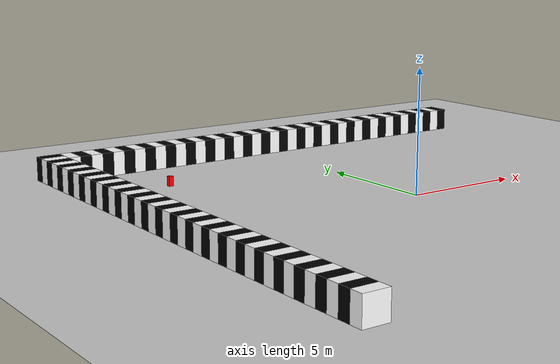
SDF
<sdf version="1.9">
 <world name="default">
  <model name="ground_plane">
   <static>true</static>
   <link name="link">
    <collision name="collision">
     <geometry><plane><normal>0 0 1</normal><size>100 100</size></plane></geometry>
    </collision>
    <visual name="visual">
     <geometry><plane><normal>0 0 1</normal><size>100 100</size></plane></geometry>
     <material>
      <ambient>0.8 0.8 0.8 1</ambient>
      <diffuse>0.8 0.8 0.8 1</diffuse>
      <specular>0.8 0.8 0.8 1</specular>
     </material>
    </visual>
   </link>
  </model>
  <model name="wall3">
   <static>true</static>
   <link name="link">
    <collision name="collision1">
     <geometry>
      <polyline>
       <point>-10 11</point>
       <point>-10 -10</point>
       <point>-11 -10</point>
       <point>-11 11</point>
       <height>1</height>
      </polyline>
     </geometry>
    </collision>
    <visual name="s1">
     <pose>-10.5 -9.75 0.5 0 0 0</pose>
     <geometry><box><size>1 0.5 1</size></box></geometry>
     <material><ambient>1 1 1 1</ambient><diffuse>1 1 1 1</diffuse></material>
    </visual>
    <visual name="s2">
     <pose>-10.5 -9.25 0.5 0 0 0</pose>
     <geometry><box><size>1 0.5 1</size></box></geometry>
     <material><ambient>0 0 0 1</ambient><diffuse>0 0 0 1</diffuse></material>
    </visual>
    <visual name="s3">
     <pose>-10.5 -8.75 0.5 0 0 0</pose>
     <geometry><box><size>1 0.5 1</size></box></geometry>
     <material><ambient>1 1 1 1</ambient><diffuse>1 1 1 1</diffuse></material>
    </visual>
    <visual name="s4">
     <pose>-10.5 -8.25 0.5 0 0 0</pose>
     <geometry><box><size>1 0.5 1</size></box></geometry>
     <material><ambient>0 0 0 1</ambient><diffuse>0 0 0 1</diffuse></material>
    </visual>
    <visual name="s5">
     <pose>-10.5 -7.75 0.5 0 0 0</pose>
     <geometry><box><size>1 0.5 1</size></box></geometry>
     <material><ambient>1 1 1 1</ambient><diffuse>1 1 1 1</diffuse></material>
    </visual>
    <visual name="s6">
     <pose>-10.5 -7.25 0.5 0 0 0</pose>
     <geometry><box><size>1 0.5 1</size></box></geometry>
     <material><ambient>0 0 0 1</ambient><diffuse>0 0 0 1</diffuse></material>
    </visual>
    <visual name="s7">
     <pose>-10.5 -6.75 0.5 0 0 0</pose>
     <geometry><box><size>1 0.5 1</size></box></geometry>
     <material><ambient>1 1 1 1</ambient><diffuse>1 1 1 1</diffuse></material>
    </visual>
    <visual name="s8">
     <pose>-10.5 -6.25 0.5 0 0 0</pose>
     <geometry><box><size>1 0.5 1</size></box></geometry>
     <material><ambient>0 0 0 1</ambient><diffuse>0 0 0 1</diffuse></material>
    </visual>
    <visual name="s9">
     <pose>-10.5 -5.75 0.5 0 0 0</pose>
     <geometry><box><size>1 0.5 1</size></box></geometry>
     <material><ambient>1 1 1 1</ambient><diffuse>1 1 1 1</diffuse></material>
    </visual>
    <visual name="s10">
     <pose>-10.5 -5.25 0.5 0 0 0</pose>
     <geometry><box><size>1 0.5 1</size></box></geometry>
     <material><ambient>0 0 0 1</ambient><diffuse>0 0 0 1</diffuse></material>
    </visual>
    <visual name="s11">
     <pose>-10.5 -4.75 0.5 0 0 0</pose>
     <geometry><box><size>1 0.5 1</size></box></geometry>
     <material><ambient>1 1 1 1</ambient><diffuse>1 1 1 1</diffuse></material>
    </visual>
    <visual name="s12">
     <pose>-10.5 -4.25 0.5 0 0 0</pose>
     <geometry><box><size>1 0.5 1</size></box></geometry>
     <material><ambient>0 0 0 1</ambient><diffuse>0 0 0 1</diffuse></material>
    </visual>
    <visual name="s13">
     <pose>-10.5 -3.75 0.5 0 0 0</pose>
     <geometry><box><size>1 0.5 1</size></box></geometry>
     <material><ambient>1 1 1 1</ambient><diffuse>1 1 1 1</diffuse></material>
    </visual>
    <visual name="s14">
     <pose>-10.5 -3.25 0.5 0 0 0</pose>
     <geometry><box><size>1 0.5 1</size></box></geometry>
     <material><ambient>0 0 0 1</ambient><diffuse>0 0 0 1</diffuse></material>
    </visual>
    <visual name="s15">
     <pose>-10.5 -2.75 0.5 0 0 0</pose>
     <geometry><box><size>1 0.5 1</size></box></geometry>
     <material><ambient>1 1 1 1</ambient><diffuse>1 1 1 1</diffuse></material>
    </visual>
    <visual name="s16">
     <pose>-10.5 -2.25 0.5 0 0 0</pose>
     <geometry><box><size>1 0.5 1</size></box></geometry>
     <material><ambient>0 0 0 1</ambient><diffuse>0 0 0 1</diffuse></material>
    </visual>
    <visual name="s17">
     <pose>-10.5 -1.75 0.5 0 0 0</pose>
     <geometry><box><size>1 0.5 1</size></box></geometry>
     <material><ambient>1 1 1 1</ambient><diffuse>1 1 1 1</diffuse></material>
    </visual>
    <visual name="s18">
     <pose>-10.5 -1.25 0.5 0 0 0</pose>
     <geometry><box><size>1 0.5 1</size></box></geometry>
     <material><ambient>0 0 0 1</ambient><diffuse>0 0 0 1</diffuse></material>
    </visual>
    <visual name="s19">
     <pose>-10.5 -0.75 0.5 0 0 0</pose>
     <geometry><box><size>1 0.5 1</size></box></geometry>
     <material><ambient>1 1 1 1</ambient><diffuse>1 1 1 1</diffuse></material>
    </visual>
    <visual name="s20">
     <pose>-10.5 -0.25 0.5 0 0 0</pose>
     <geometry><box><size>1 0.5 1</size></box></geometry>
     <material><ambient>0 0 0 1</ambient><diffuse>0 0 0 1</diffuse></material>
    </visual>
    <visual name="s21">
     <pose>-10.5 0.25 0.5 0 0 0</pose>
     <geometry><box><size>1 0.5 1</size></box></geometry>
     <material><ambient>1 1 1 1</ambient><diffuse>1 1 1 1</diffuse></material>
    </visual>
    <visual name="s22">
     <pose>-10.5 0.75 0.5 0 0 0</pose>
     <geometry><box><size>1 0.5 1</size></box></geometry>
     <material><ambient>0 0 0 1</ambient><diffuse>0 0 0 1</diffuse></material>
    </visual>
    <visual name="s23">
     <pose>-10.5 1.25 0.5 0 0 0</pose>
     <geometry><box><size>1 0.5 1</size></box></geometry>
     <material><ambient>1 1 1 1</ambient><diffuse>1 1 1 1</diffuse></material>
    </visual>
    <visual name="s24">
     <pose>-10.5 1.75 0.5 0 0 0</pose>
     <geometry><box><size>1 0.5 1</size></box></geometry>
     <material><ambient>0 0 0 1</ambient><diffuse>0 0 0 1</diffuse></material>
    </visual>
    <visual name="s25">
     <pose>-10.5 2.25 0.5 0 0 0</pose>
     <geometry><box><size>1 0.5 1</size></box></geometry>
     <material><ambient>1 1 1 1</ambient><diffuse>1 1 1 1</diffuse></material>
    </visual>
    <visual name="s26">
     <pose>-10.5 2.75 0.5 0 0 0</pose>
     <geometry><box><size>1 0.5 1</size></box></geometry>
     <material><ambient>0 0 0 1</ambient><diffuse>0 0 0 1</diffuse></material>
    </visual>
    <visual name="s27">
     <pose>-10.5 3.25 0.5 0 0 0</pose>
     <geometry><box><size>1 0.5 1</size></box></geometry>
     <material><ambient>1 1 1 1</ambient><diffuse>1 1 1 1</diffuse></material>
    </visual>
    <visual name="s28">
     <pose>-10.5 3.75 0.5 0 0 0</pose>
     <geometry><box><size>1 0.5 1</size></box></geometry>
     <material><ambient>0 0 0 1</ambient><diffuse>0 0 0 1</diffuse></material>
    </visual>
    <visual name="s29">
     <pose>-10.5 4.25 0.5 0 0 0</pose>
     <geometry><box><size>1 0.5 1</size></box></geometry>
     <material><ambient>1 1 1 1</ambient><diffuse>1 1 1 1</diffuse></material>
    </visual>
    <visual name="s30">
     <pose>-10.5 4.75 0.5 0 0 0</pose>
     <geometry><box><size>1 0.5 1</size></box></geometry>
     <material><ambient>0 0 0 1</ambient><diffuse>0 0 0 1</diffuse></material>
    </visual>
    <visual name="s31">
     <pose>-10.5 5.25 0.5 0 0 0</pose>
     <geometry><box><size>1 0.5 1</size></box></geometry>
     <material><ambient>1 1 1 1</ambient><diffuse>1 1 1 1</diffuse></material>
    </visual>
    <visual name="s32">
     <pose>-10.5 5.75 0.5 0 0 0</pose>
     <geometry><box><size>1 0.5 1</size></box></geometry>
     <material><ambient>0 0 0 1</ambient><diffuse>0 0 0 1</diffuse></material>
    </visual>
    <visual name="s33">
     <pose>-10.5 6.25 0.5 0 0 0</pose>
     <geometry><box><size>1 0.5 1</size></box></geometry>
     <material><ambient>1 1 1 1</ambient><diffuse>1 1 1 1</diffuse></material>
    </visual>
    <visual name="s34">
     <pose>-10.5 6.75 0.5 0 0 0</pose>
     <geometry><box><size>1 0.5 1</size></box></geometry>
     <material><ambient>0 0 0 1</ambient><diffuse>0 0 0 1</diffuse></material>
    </visual>
    <visual name="s35">
     <pose>-10.5 7.25 0.5 0 0 0</pose>
     <geometry><box><size>1 0.5 1</size></box></geometry>
     <material><ambient>1 1 1 1</ambient><diffuse>1 1 1 1</diffuse></material>
    </visual>
    <visual name="s36">
     <pose>-10.5 7.75 0.5 0 0 0</pose>
     <geometry><box><size>1 0.5 1</size></box></geometry>
     <material><ambient>0 0 0 1</ambient><diffuse>0 0 0 1</diffuse></material>
    </visual>
    <visual name="s37">
     <pose>-10.5 8.25 0.5 0 0 0</pose>
     <geometry><box><size>1 0.5 1</size></box></geometry>
     <material><ambient>1 1 1 1</ambient><diffuse>1 1 1 1</diffuse></material>
    </visual>
    <visual name="s38">
     <pose>-10.5 8.75 0.5 0 0 0</pose>
     <geometry><box><size>1 0.5 1</size></box></geometry>
     <material><ambient>0 0 0 1</ambient><diffuse>0 0 0 1</diffuse></material>
    </visual>
    <visual name="s39">
     <pose>-10.5 9.25 0.5 0 0 0</pose>
     <geometry><box><size>1 0.5 1</size></box></geometry>
     <material><ambient>1 1 1 1</ambient><diffuse>1 1 1 1</diffuse></material>
    </visual>
    <visual name="s40">
     <pose>-10.5 9.75 0.5 0 0 0</pose>
     <geometry><box><size>1 0.5 1</size></box></geometry>
     <material><ambient>0 0 0 1</ambient><diffuse>0 0 0 1</diffuse></material>
    </visual>
    <visual name="s41">
     <pose>-10.5 10.25 0.5 0 0 0</pose>
     <geometry><box><size>1 0.5 1</size></box></geometry>
     <material><ambient>1 1 1 1</ambient><diffuse>1 1 1 1</diffuse></material>
    </visual>
    <visual name="s42">
     <pose>-10.5 10.75 0.5 0 0 0</pose>
     <geometry><box><size>1 0.5 1</size></box></geometry>
     <material><ambient>0 0 0 1</ambient><diffuse>0 0 0 1</diffuse></material>
    </visual>
   </link>
  </model>
  <model name="wall4">
   <static>true</static>
   <link name="link">
    <collision name="collision1">
     <geometry>
      <polyline>
       <point>11 11</point>
       <point>11 10</point>
       <point>-10 10</point>
       <point>-10 11</point>
       <height>1</height>
      </polyline>
     </geometry>
    </collision>
    <visual name="s1">
     <pose>-9.75 10.5 0.5 0 0 0</pose>
     <geometry><box><size>0.5 1 1</size></box></geometry>
     <material><ambient>1 1 1 1</ambient><diffuse>1 1 1 1</diffuse></material>
    </visual>
    <visual name="s2">
     <pose>-9.25 10.5 0.5 0 0 0</pose>
     <geometry><box><size>0.5 1 1</size></box></geometry>
     <material><ambient>0 0 0 1</ambient><diffuse>0 0 0 1</diffuse></material>
    </visual>
    <visual name="s3">
     <pose>-8.75 10.5 0.5 0 0 0</pose>
     <geometry><box><size>0.5 1 1</size></box></geometry>
     <material><ambient>1 1 1 1</ambient><diffuse>1 1 1 1</diffuse></material>
    </visual>
    <visual name="s4">
     <pose>-8.25 10.5 0.5 0 0 0</pose>
     <geometry><box><size>0.5 1 1</size></box></geometry>
     <material><ambient>0 0 0 1</ambient><diffuse>0 0 0 1</diffuse></material>
    </visual>
    <visual name="s5">
     <pose>-7.75 10.5 0.5 0 0 0</pose>
     <geometry><box><size>0.5 1 1</size></box></geometry>
     <material><ambient>1 1 1 1</ambient><diffuse>1 1 1 1</diffuse></material>
    </visual>
    <visual name="s6">
     <pose>-7.25 10.5 0.5 0 0 0</pose>
     <geometry><box><size>0.5 1 1</size></box></geometry>
     <material><ambient>0 0 0 1</ambient><diffuse>0 0 0 1</diffuse></material>
    </visual>
    <visual name="s7">
     <pose>-6.75 10.5 0.5 0 0 0</pose>
     <geometry><box><size>0.5 1 1</size></box></geometry>
     <material><ambient>1 1 1 1</ambient><diffuse>1 1 1 1</diffuse></material>
    </visual>
    <visual name="s8">
     <pose>-6.25 10.5 0.5 0 0 0</pose>
     <geometry><box><size>0.5 1 1</size></box></geometry>
     <material><ambient>0 0 0 1</ambient><diffuse>0 0 0 1</diffuse></material>
    </visual>
    <visual name="s9">
     <pose>-5.75 10.5 0.5 0 0 0</pose>
     <geometry><box><size>0.5 1 1</size></box></geometry>
     <material><ambient>1 1 1 1</ambient><diffuse>1 1 1 1</diffuse></material>
    </visual>
    <visual name="s10">
     <pose>-5.25 10.5 0.5 0 0 0</pose>
     <geometry><box><size>0.5 1 1</size></box></geometry>
     <material><ambient>0 0 0 1</ambient><diffuse>0 0 0 1</diffuse></material>
    </visual>
    <visual name="s11">
     <pose>-4.75 10.5 0.5 0 0 0</pose>
     <geometry><box><size>0.5 1 1</size></box></geometry>
     <material><ambient>1 1 1 1</ambient><diffuse>1 1 1 1</diffuse></material>
    </visual>
    <visual name="s12">
     <pose>-4.25 10.5 0.5 0 0 0</pose>
     <geometry><box><size>0.5 1 1</size></box></geometry>
     <material><ambient>0 0 0 1</ambient><diffuse>0 0 0 1</diffuse></material>
    </visual>
    <visual name="s13">
     <pose>-3.75 10.5 0.5 0 0 0</pose>
     <geometry><box><size>0.5 1 1</size></box></geometry>
     <material><ambient>1 1 1 1</ambient><diffuse>1 1 1 1</diffuse></material>
    </visual>
    <visual name="s14">
     <pose>-3.25 10.5 0.5 0 0 0</pose>
     <geometry><box><size>0.5 1 1</size></box></geometry>
     <material><ambient>0 0 0 1</ambient><diffuse>0 0 0 1</diffuse></material>
    </visual>
    <visual name="s15">
     <pose>-2.75 10.5 0.5 0 0 0</pose>
     <geometry><box><size>0.5 1 1</size></box></geometry>
     <material><ambient>1 1 1 1</ambient><diffuse>1 1 1 1</diffuse></material>
    </visual>
    <visual name="s16">
     <pose>-2.25 10.5 0.5 0 0 0</pose>
     <geometry><box><size>0.5 1 1</size></box></geometry>
     <material><ambient>0 0 0 1</ambient><diffuse>0 0 0 1</diffuse></material>
    </visual>
    <visual name="s17">
     <pose>-1.75 10.5 0.5 0 0 0</pose>
     <geometry><box><size>0.5 1 1</size></box></geometry>
     <material><ambient>1 1 1 1</ambient><diffuse>1 1 1 1</diffuse></material>
    </visual>
    <visual name="s18">
     <pose>-1.25 10.5 0.5 0 0 0</pose>
     <geometry><box><size>0.5 1 1</size></box></geometry>
     <material><ambient>0 0 0 1</ambient><diffuse>0 0 0 1</diffuse></material>
    </visual>
    <visual name="s19">
     <pose>-0.75 10.5 0.5 0 0 0</pose>
     <geometry><box><size>0.5 1 1</size></box></geometry>
     <material><ambient>1 1 1 1</ambient><diffuse>1 1 1 1</diffuse></material>
    </visual>
    <visual name="s20">
     <pose>-0.25 10.5 0.5 0 0 0</pose>
     <geometry><box><size>0.5 1 1</size></box></geometry>
     <material><ambient>0 0 0 1</ambient><diffuse>0 0 0 1</diffuse></material>
    </visual>
    <visual name="s21">
     <pose>0.25 10.5 0.5 0 0 0</pose>
     <geometry><box><size>0.5 1 1</size></box></geometry>
     <material><ambient>1 1 1 1</ambient><diffuse>1 1 1 1</diffuse></material>
    </visual>
    <visual name="s22">
     <pose>0.75 10.5 0.5 0 0 0</pose>
     <geometry><box><size>0.5 1 1</size></box></geometry>
     <material><ambient>0 0 0 1</ambient><diffuse>0 0 0 1</diffuse></material>
    </visual>
    <visual name="s23">
     <pose>1.25 10.5 0.5 0 0 0</pose>
     <geometry><box><size>0.5 1 1</size></box></geometry>
     <material><ambient>1 1 1 1</ambient><diffuse>1 1 1 1</diffuse></material>
    </visual>
    <visual name="s24">
     <pose>1.75 10.5 0.5 0 0 0</pose>
     <geometry><box><size>0.5 1 1</size></box></geometry>
     <material><ambient>0 0 0 1</ambient><diffuse>0 0 0 1</diffuse></material>
    </visual>
    <visual name="s25">
     <pose>2.25 10.5 0.5 0 0 0</pose>
     <geometry><box><size>0.5 1 1</size></box></geometry>
     <material><ambient>1 1 1 1</ambient><diffuse>1 1 1 1</diffuse></material>
    </visual>
    <visual name="s26">
     <pose>2.75 10.5 0.5 0 0 0</pose>
     <geometry><box><size>0.5 1 1</size></box></geometry>
     <material><ambient>0 0 0 1</ambient><diffuse>0 0 0 1</diffuse></material>
    </visual>
    <visual name="s27">
     <pose>3.25 10.5 0.5 0 0 0</pose>
     <geometry><box><size>0.5 1 1</size></box></geometry>
     <material><ambient>1 1 1 1</ambient><diffuse>1 1 1 1</diffuse></material>
    </visual>
    <visual name="s28">
     <pose>3.75 10.5 0.5 0 0 0</pose>
     <geometry><box><size>0.5 1 1</size></box></geometry>
     <material><ambient>0 0 0 1</ambient><diffuse>0 0 0 1</diffuse></material>
    </visual>
    <visual name="s29">
     <pose>4.25 10.5 0.5 0 0 0</pose>
     <geometry><box><size>0.5 1 1</size></box></geometry>
     <material><ambient>1 1 1 1</ambient><diffuse>1 1 1 1</diffuse></material>
    </visual>
    <visual name="s30">
     <pose>4.75 10.5 0.5 0 0 0</pose>
     <geometry><box><size>0.5 1 1</size></box></geometry>
     <material><ambient>0 0 0 1</ambient><diffuse>0 0 0 1</diffuse></material>
    </visual>
    <visual name="s31">
     <pose>5.25 10.5 0.5 0 0 0</pose>
     <geometry><box><size>0.5 1 1</size></box></geometry>
     <material><ambient>1 1 1 1</ambient><diffuse>1 1 1 1</diffuse></material>
    </visual>
    <visual name="s32">
     <pose>5.75 10.5 0.5 0 0 0</pose>
     <geometry><box><size>0.5 1 1</size></box></geometry>
     <material><ambient>0 0 0 1</ambient><diffuse>0 0 0 1</diffuse></material>
    </visual>
    <visual name="s33">
     <pose>6.25 10.5 0.5 0 0 0</pose>
     <geometry><box><size>0.5 1 1</size></box></geometry>
     <material><ambient>1 1 1 1</ambient><diffuse>1 1 1 1</diffuse></material>
    </visual>
    <visual name="s34">
     <pose>6.75 10.5 0.5 0 0 0</pose>
     <geometry><box><size>0.5 1 1</size></box></geometry>
     <material><ambient>0 0 0 1</ambient><diffuse>0 0 0 1</diffuse></material>
    </visual>
    <visual name="s35">
     <pose>7.25 10.5 0.5 0 0 0</pose>
     <geometry><box><size>0.5 1 1</size></box></geometry>
     <material><ambient>1 1 1 1</ambient><diffuse>1 1 1 1</diffuse></material>
    </visual>
    <visual name="s36">
     <pose>7.75 10.5 0.5 0 0 0</pose>
     <geometry><box><size>0.5 1 1</size></box></geometry>
     <material><ambient>0 0 0 1</ambient><diffuse>0 0 0 1</diffuse></material>
    </visual>
    <visual name="s37">
     <pose>8.25 10.5 0.5 0 0 0</pose>
     <geometry><box><size>0.5 1 1</size></box></geometry>
     <material><ambient>1 1 1 1</ambient><diffuse>1 1 1 1</diffuse></material>
    </visual>
    <visual name="s38">
     <pose>8.75 10.5 0.5 0 0 0</pose>
     <geometry><box><size>0.5 1 1</size></box></geometry>
     <material><ambient>0 0 0 1</ambient><diffuse>0 0 0 1</diffuse></material>
    </visual>
    <visual name="s39">
     <pose>9.25 10.5 0.5 0 0 0</pose>
     <geometry><box><size>0.5 1 1</size></box></geometry>
     <material><ambient>1 1 1 1</ambient><diffuse>1 1 1 1</diffuse></material>
    </visual>
    <visual name="s40">
     <pose>9.75 10.5 0.5 0 0 0</pose>
     <geometry><box><size>0.5 1 1</size></box></geometry>
     <material><ambient>0 0 0 1</ambient><diffuse>0 0 0 1</diffuse></material>
    </visual>
    <visual name="s41">
     <pose>10.25 10.5 0.5 0 0 0</pose>
     <geometry><box><size>0.5 1 1</size></box></geometry>
     <material><ambient>1 1 1 1</ambient><diffuse>1 1 1 1</diffuse></material>
    </visual>
    <visual name="s42">
     <pose>10.75 10.5 0.5 0 0 0</pose>
     <geometry><box><size>0.5 1 1</size></box></geometry>
     <material><ambient>0 0 0 1</ambient><diffuse>0 0 0 1</diffuse></material>
    </visual>
   </link>
  </model>
  <model name="eval_dyn1">
   <static>true</static>
   <pose>-7 7 0.2 0 0 0</pose>
   <link name="link">
    <collision name="collision"><geometry><box><size>0.2 0.2 0.4</size></box></geometry></collision>
    <visual name="visual">
     <geometry><box><size>0.2 0.2 0.4</size></box></geometry>
     <material><ambient>1 0 0 1</ambient><diffuse>1 0 0 1</diffuse></material>
    </visual>
   </link>
  </model>
 </world>
</sdf>
